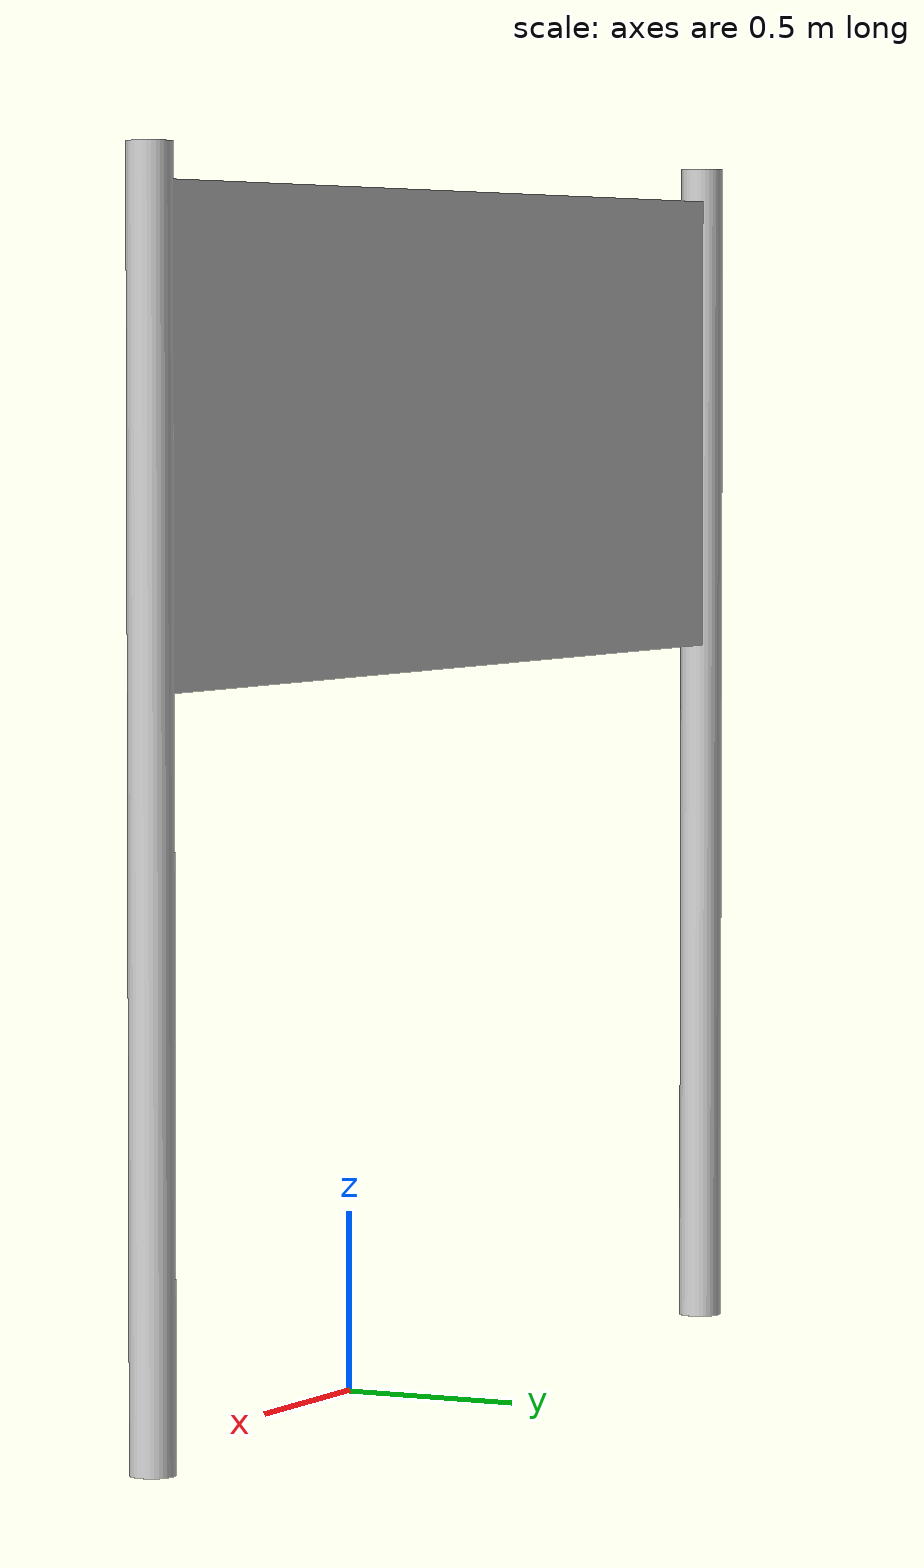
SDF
<?xml version="1.0" ?>
<sdf version="1.5">
  <model name='nrppanel'>
    <pose>0 0 0 0 0 0</pose>
    <static>1</static>
    <link name='body'>
      <collision name="nrppanel">
        <pose>0 0 0 0 0 0</pose>
        <geometry>
          <mesh>
            <uri>model://nrp_panel/meshes/nrppanel-coll.dae</uri>
          </mesh>
        </geometry>
      </collision>
      <visual name='nrppanel'>
        <cast_shadows>1</cast_shadows>
        <geometry>
          <mesh>
            <uri>model://nrp_panel/meshes/nrppanel.dae</uri>
          </mesh>
        </geometry>
      </visual>
      <velocity_decay>
        <linear>0</linear>
        <angular>0</angular>
      </velocity_decay>
      <self_collide>0</self_collide>
      <kinematic>0</kinematic>
      <gravity>1</gravity>
    </link>
  </model>
</sdf>
